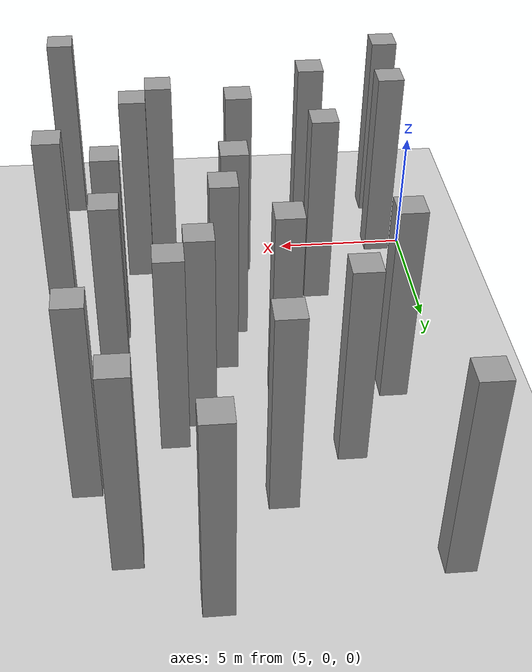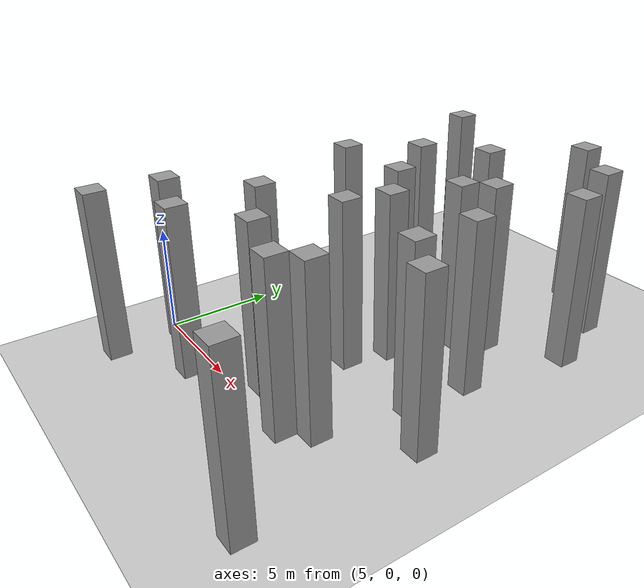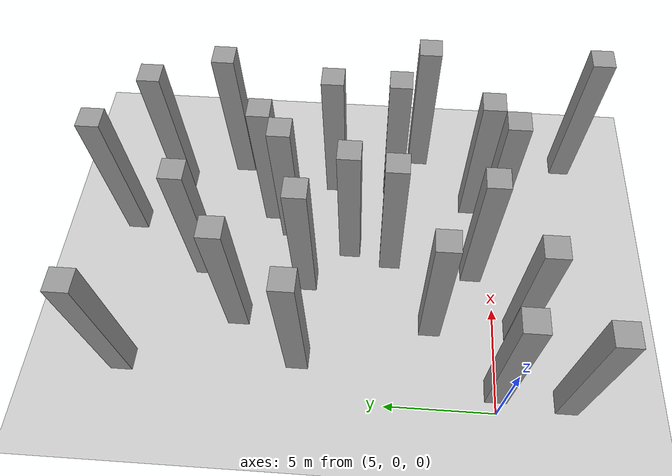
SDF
<sdf version="1.7">
 <world name="default">
  <model name="ground_plane">
   <static>1</static>
   <link name="link">
    <collision name="collision">
     <geometry><plane><normal>0 0 1</normal><size>100 100</size></plane></geometry>
     <surface>
      <contact><collide_bitmask>65535</collide_bitmask></contact>
      <friction><ode><mu>100</mu><mu2>50</mu2></ode></friction>
     </surface>
    </collision>
    <visual name="visual">
     <cast_shadows>0</cast_shadows>
     <geometry><plane><normal>0 0 1</normal><size>100 100</size></plane></geometry>
     <material>
      <script><uri>file://media/materials/scripts/gazebo.material</uri><name>Gazebo/Grey</name></script>
     </material>
    </visual>
   </link>
  </model>
  <model name="unit_box_static95_clone_52_clone_clone_15">
   <link name="link">
    <inertial>
     <mass>1</mass>
     <inertia>
      <ixx>0.166667</ixx>
      <ixy>0</ixy>
      <ixz>0</ixz>
      <iyy>0.166667</iyy>
      <iyz>0</iyz>
      <izz>0.166667</izz>
     </inertia>
    </inertial>
    <visual name="visual">
     <geometry><box><size>1 1 8</size></box></geometry>
     <material>
      <script><name>Gazebo/Grey</name><uri>file://media/materials/scripts/gazebo.material</uri></script>
      <shader type="pixel"/>
     </material>
    </visual>
    <collision name="collision">
     <geometry><box><size>1 1 8</size></box></geometry>
     <surface>
      <friction>
       <ode><mu>1</mu><mu2>1</mu2><fdir1>0 0 0</fdir1><slip1>0</slip1><slip2>0</slip2></ode>
       <torsional>
        <coefficient>1</coefficient>
        <patch_radius>0</patch_radius>
        <surface_radius>0</surface_radius>
        <use_patch_radius>1</use_patch_radius>
        <ode><slip>0</slip></ode>
       </torsional>
      </friction>
      <bounce><restitution_coefficient>0</restitution_coefficient><threshold>1e+06</threshold></bounce>
      <contact>
       <collide_without_contact>0</collide_without_contact>
       <collide_without_contact_bitmask>1</collide_without_contact_bitmask>
       <collide_bitmask>1</collide_bitmask>
       <ode>
        <soft_cfm>0</soft_cfm>
        <soft_erp>0.2</soft_erp>
        <kp>1e+13</kp>
        <kd>1</kd>
        <max_vel>0.01</max_vel>
        <min_depth>0</min_depth>
       </ode>
       <bullet>
        <split_impulse>1</split_impulse>
        <split_impulse_penetration_threshold>-0.01</split_impulse_penetration_threshold>
        <soft_cfm>0</soft_cfm>
        <soft_erp>0.2</soft_erp>
        <kp>1e+13</kp>
        <kd>1</kd>
       </bullet>
      </contact>
     </surface>
    </collision>
   </link>
   <static>1</static>
   <pose>6 0 4 0 -0 0</pose>
  </model>
  <model name="unit_box_static95_clone_52_clone_clone_55">
   <link name="link">
    <inertial>
     <mass>1</mass>
     <inertia>
      <ixx>0.166667</ixx>
      <ixy>0</ixy>
      <ixz>0</ixz>
      <iyy>0.166667</iyy>
      <iyz>0</iyz>
      <izz>0.166667</izz>
     </inertia>
    </inertial>
    <visual name="visual">
     <geometry><box><size>1 1 8</size></box></geometry>
     <material>
      <script><name>Gazebo/Grey</name><uri>file://media/materials/scripts/gazebo.material</uri></script>
      <shader type="pixel"/>
     </material>
    </visual>
    <collision name="collision">
     <geometry><box><size>1 1 8</size></box></geometry>
     <surface>
      <friction>
       <ode><mu>1</mu><mu2>1</mu2><fdir1>0 0 0</fdir1><slip1>0</slip1><slip2>0</slip2></ode>
       <torsional>
        <coefficient>1</coefficient>
        <patch_radius>0</patch_radius>
        <surface_radius>0</surface_radius>
        <use_patch_radius>1</use_patch_radius>
        <ode><slip>0</slip></ode>
       </torsional>
      </friction>
      <bounce><restitution_coefficient>0</restitution_coefficient><threshold>1e+06</threshold></bounce>
      <contact>
       <collide_without_contact>0</collide_without_contact>
       <collide_without_contact_bitmask>1</collide_without_contact_bitmask>
       <collide_bitmask>1</collide_bitmask>
       <ode>
        <soft_cfm>0</soft_cfm>
        <soft_erp>0.2</soft_erp>
        <kp>1e+13</kp>
        <kd>1</kd>
        <max_vel>0.01</max_vel>
        <min_depth>0</min_depth>
       </ode>
       <bullet>
        <split_impulse>1</split_impulse>
        <split_impulse_penetration_threshold>-0.01</split_impulse_penetration_threshold>
        <soft_cfm>0</soft_cfm>
        <soft_erp>0.2</soft_erp>
        <kp>1e+13</kp>
        <kd>1</kd>
       </bullet>
      </contact>
     </surface>
    </collision>
   </link>
   <static>1</static>
   <pose>9 12 4 0 -0 0</pose>
  </model>
  <model name="unit_box_static95_clone_52_clone_clone_56">
   <link name="link">
    <inertial>
     <mass>1</mass>
     <inertia>
      <ixx>0.166667</ixx>
      <ixy>0</ixy>
      <ixz>0</ixz>
      <iyy>0.166667</iyy>
      <iyz>0</iyz>
      <izz>0.166667</izz>
     </inertia>
    </inertial>
    <visual name="visual">
     <geometry><box><size>1 1 8</size></box></geometry>
     <material>
      <script><name>Gazebo/Grey</name><uri>file://media/materials/scripts/gazebo.material</uri></script>
      <shader type="pixel"/>
     </material>
    </visual>
    <collision name="collision">
     <geometry><box><size>1 1 8</size></box></geometry>
     <surface>
      <friction>
       <ode><mu>1</mu><mu2>1</mu2><fdir1>0 0 0</fdir1><slip1>0</slip1><slip2>0</slip2></ode>
       <torsional>
        <coefficient>1</coefficient>
        <patch_radius>0</patch_radius>
        <surface_radius>0</surface_radius>
        <use_patch_radius>1</use_patch_radius>
        <ode><slip>0</slip></ode>
       </torsional>
      </friction>
      <bounce><restitution_coefficient>0</restitution_coefficient><threshold>1e+06</threshold></bounce>
      <contact>
       <collide_without_contact>0</collide_without_contact>
       <collide_without_contact_bitmask>1</collide_without_contact_bitmask>
       <collide_bitmask>1</collide_bitmask>
       <ode>
        <soft_cfm>0</soft_cfm>
        <soft_erp>0.2</soft_erp>
        <kp>1e+13</kp>
        <kd>1</kd>
        <max_vel>0.01</max_vel>
        <min_depth>0</min_depth>
       </ode>
       <bullet>
        <split_impulse>1</split_impulse>
        <split_impulse_penetration_threshold>-0.01</split_impulse_penetration_threshold>
        <soft_cfm>0</soft_cfm>
        <soft_erp>0.2</soft_erp>
        <kp>1e+13</kp>
        <kd>1</kd>
       </bullet>
      </contact>
     </surface>
    </collision>
   </link>
   <static>1</static>
   <pose>11.585 14 4 0 -0 0</pose>
  </model>
  <model name="unit_box_static95_clone_52_clone_clone_57">
   <link name="link">
    <inertial>
     <mass>1</mass>
     <inertia>
      <ixx>0.166667</ixx>
      <ixy>0</ixy>
      <ixz>0</ixz>
      <iyy>0.166667</iyy>
      <iyz>0</iyz>
      <izz>0.166667</izz>
     </inertia>
    </inertial>
    <visual name="visual">
     <geometry><box><size>1 1 8</size></box></geometry>
     <material>
      <script><name>Gazebo/Grey</name><uri>file://media/materials/scripts/gazebo.material</uri></script>
      <shader type="pixel"/>
     </material>
    </visual>
    <collision name="collision">
     <geometry><box><size>1 1 8</size></box></geometry>
     <surface>
      <friction>
       <ode><mu>1</mu><mu2>1</mu2><fdir1>0 0 0</fdir1><slip1>0</slip1><slip2>0</slip2></ode>
       <torsional>
        <coefficient>1</coefficient>
        <patch_radius>0</patch_radius>
        <surface_radius>0</surface_radius>
        <use_patch_radius>1</use_patch_radius>
        <ode><slip>0</slip></ode>
       </torsional>
      </friction>
      <bounce><restitution_coefficient>0</restitution_coefficient><threshold>1e+06</threshold></bounce>
      <contact>
       <collide_without_contact>0</collide_without_contact>
       <collide_without_contact_bitmask>1</collide_without_contact_bitmask>
       <collide_bitmask>1</collide_bitmask>
       <ode>
        <soft_cfm>0</soft_cfm>
        <soft_erp>0.2</soft_erp>
        <kp>1e+13</kp>
        <kd>1</kd>
        <max_vel>0.01</max_vel>
        <min_depth>0</min_depth>
       </ode>
       <bullet>
        <split_impulse>1</split_impulse>
        <split_impulse_penetration_threshold>-0.01</split_impulse_penetration_threshold>
        <soft_cfm>0</soft_cfm>
        <soft_erp>0.2</soft_erp>
        <kp>1e+13</kp>
        <kd>1</kd>
       </bullet>
      </contact>
     </surface>
    </collision>
   </link>
   <static>1</static>
   <pose>14 10 4 0 -0 0</pose>
  </model>
  <model name="unit_box_static95_clone_52_clone_clone_58">
   <link name="link">
    <inertial>
     <mass>1</mass>
     <inertia>
      <ixx>0.166667</ixx>
      <ixy>0</ixy>
      <ixz>0</ixz>
      <iyy>0.166667</iyy>
      <iyz>0</iyz>
      <izz>0.166667</izz>
     </inertia>
    </inertial>
    <visual name="visual">
     <geometry><box><size>1 1 8</size></box></geometry>
     <material>
      <script><name>Gazebo/Grey</name><uri>file://media/materials/scripts/gazebo.material</uri></script>
      <shader type="pixel"/>
     </material>
    </visual>
    <collision name="collision">
     <geometry><box><size>1 1 8</size></box></geometry>
     <surface>
      <friction>
       <ode><mu>1</mu><mu2>1</mu2><fdir1>0 0 0</fdir1><slip1>0</slip1><slip2>0</slip2></ode>
       <torsional>
        <coefficient>1</coefficient>
        <patch_radius>0</patch_radius>
        <surface_radius>0</surface_radius>
        <use_patch_radius>1</use_patch_radius>
        <ode><slip>0</slip></ode>
       </torsional>
      </friction>
      <bounce><restitution_coefficient>0</restitution_coefficient><threshold>1e+06</threshold></bounce>
      <contact>
       <collide_without_contact>0</collide_without_contact>
       <collide_without_contact_bitmask>1</collide_without_contact_bitmask>
       <collide_bitmask>1</collide_bitmask>
       <ode>
        <soft_cfm>0</soft_cfm>
        <soft_erp>0.2</soft_erp>
        <kp>1e+13</kp>
        <kd>1</kd>
        <max_vel>0.01</max_vel>
        <min_depth>0</min_depth>
       </ode>
       <bullet>
        <split_impulse>1</split_impulse>
        <split_impulse_penetration_threshold>-0.01</split_impulse_penetration_threshold>
        <soft_cfm>0</soft_cfm>
        <soft_erp>0.2</soft_erp>
        <kp>1e+13</kp>
        <kd>1</kd>
       </bullet>
      </contact>
     </surface>
    </collision>
   </link>
   <static>1</static>
   <pose>11 9 4 0 -0 0</pose>
  </model>
  <model name="unit_box_static95_clone_52_clone_clone_65">
   <link name="link">
    <inertial>
     <mass>1</mass>
     <inertia>
      <ixx>0.166667</ixx>
      <ixy>0</ixy>
      <ixz>0</ixz>
      <iyy>0.166667</iyy>
      <iyz>0</iyz>
      <izz>0.166667</izz>
     </inertia>
    </inertial>
    <visual name="visual">
     <geometry><box><size>1 1 8</size></box></geometry>
     <material>
      <script><name>Gazebo/Grey</name><uri>file://media/materials/scripts/gazebo.material</uri></script>
      <shader type="pixel"/>
     </material>
    </visual>
    <collision name="collision">
     <geometry><box><size>1 1 8</size></box></geometry>
     <surface>
      <friction>
       <ode><mu>1</mu><mu2>1</mu2><fdir1>0 0 0</fdir1><slip1>0</slip1><slip2>0</slip2></ode>
       <torsional>
        <coefficient>1</coefficient>
        <patch_radius>0</patch_radius>
        <surface_radius>0</surface_radius>
        <use_patch_radius>1</use_patch_radius>
        <ode><slip>0</slip></ode>
       </torsional>
      </friction>
      <bounce><restitution_coefficient>0</restitution_coefficient><threshold>1e+06</threshold></bounce>
      <contact>
       <collide_without_contact>0</collide_without_contact>
       <collide_without_contact_bitmask>1</collide_without_contact_bitmask>
       <collide_bitmask>1</collide_bitmask>
       <ode>
        <soft_cfm>0</soft_cfm>
        <soft_erp>0.2</soft_erp>
        <kp>1e+13</kp>
        <kd>1</kd>
        <max_vel>0.01</max_vel>
        <min_depth>0</min_depth>
       </ode>
       <bullet>
        <split_impulse>1</split_impulse>
        <split_impulse_penetration_threshold>-0.01</split_impulse_penetration_threshold>
        <soft_cfm>0</soft_cfm>
        <soft_erp>0.2</soft_erp>
        <kp>1e+13</kp>
        <kd>1</kd>
       </bullet>
      </contact>
     </surface>
    </collision>
   </link>
   <static>1</static>
   <pose>6.43793 17 4 0 -0 0</pose>
  </model>
  <model name="unit_box_static95_clone_52_clone_clone_68">
   <link name="link">
    <inertial>
     <mass>1</mass>
     <inertia>
      <ixx>0.166667</ixx>
      <ixy>0</ixy>
      <ixz>0</ixz>
      <iyy>0.166667</iyy>
      <iyz>0</iyz>
      <izz>0.166667</izz>
     </inertia>
    </inertial>
    <visual name="visual">
     <geometry><box><size>1 1 8</size></box></geometry>
     <material>
      <script><name>Gazebo/Grey</name><uri>file://media/materials/scripts/gazebo.material</uri></script>
      <shader type="pixel"/>
     </material>
    </visual>
    <collision name="collision">
     <geometry><box><size>1 1 8</size></box></geometry>
     <surface>
      <friction>
       <ode><mu>1</mu><mu2>1</mu2><fdir1>0 0 0</fdir1><slip1>0</slip1><slip2>0</slip2></ode>
       <torsional>
        <coefficient>1</coefficient>
        <patch_radius>0</patch_radius>
        <surface_radius>0</surface_radius>
        <use_patch_radius>1</use_patch_radius>
        <ode><slip>0</slip></ode>
       </torsional>
      </friction>
      <bounce><restitution_coefficient>0</restitution_coefficient><threshold>1e+06</threshold></bounce>
      <contact>
       <collide_without_contact>0</collide_without_contact>
       <collide_without_contact_bitmask>1</collide_without_contact_bitmask>
       <collide_bitmask>1</collide_bitmask>
       <ode>
        <soft_cfm>0</soft_cfm>
        <soft_erp>0.2</soft_erp>
        <kp>1e+13</kp>
        <kd>1</kd>
        <max_vel>0.01</max_vel>
        <min_depth>0</min_depth>
       </ode>
       <bullet>
        <split_impulse>1</split_impulse>
        <split_impulse_penetration_threshold>-0.01</split_impulse_penetration_threshold>
        <soft_cfm>0</soft_cfm>
        <soft_erp>0.2</soft_erp>
        <kp>1e+13</kp>
        <kd>1</kd>
       </bullet>
      </contact>
     </surface>
    </collision>
   </link>
   <static>1</static>
   <pose>15 11 4 0 -0 0</pose>
  </model>
  <model name="unit_box_static95_clone_52_clone_clone_82">
   <link name="link">
    <inertial>
     <mass>1</mass>
     <inertia>
      <ixx>0.166667</ixx>
      <ixy>0</ixy>
      <ixz>0</ixz>
      <iyy>0.166667</iyy>
      <iyz>0</iyz>
      <izz>0.166667</izz>
     </inertia>
    </inertial>
    <visual name="visual">
     <geometry><box><size>1 1 8</size></box></geometry>
     <material>
      <script><name>Gazebo/Grey</name><uri>file://media/materials/scripts/gazebo.material</uri></script>
      <shader type="pixel"/>
     </material>
    </visual>
    <collision name="collision">
     <geometry><box><size>1 1 8</size></box></geometry>
     <surface>
      <friction>
       <ode><mu>1</mu><mu2>1</mu2><fdir1>0 0 0</fdir1><slip1>0</slip1><slip2>0</slip2></ode>
       <torsional>
        <coefficient>1</coefficient>
        <patch_radius>0</patch_radius>
        <surface_radius>0</surface_radius>
        <use_patch_radius>1</use_patch_radius>
        <ode><slip>0</slip></ode>
       </torsional>
      </friction>
      <bounce><restitution_coefficient>0</restitution_coefficient><threshold>1e+06</threshold></bounce>
      <contact>
       <collide_without_contact>0</collide_without_contact>
       <collide_without_contact_bitmask>1</collide_without_contact_bitmask>
       <collide_bitmask>1</collide_bitmask>
       <ode>
        <soft_cfm>0</soft_cfm>
        <soft_erp>0.2</soft_erp>
        <kp>1e+13</kp>
        <kd>1</kd>
        <max_vel>0.01</max_vel>
        <min_depth>0</min_depth>
       </ode>
       <bullet>
        <split_impulse>1</split_impulse>
        <split_impulse_penetration_threshold>-0.01</split_impulse_penetration_threshold>
        <soft_cfm>0</soft_cfm>
        <soft_erp>0.2</soft_erp>
        <kp>1e+13</kp>
        <kd>1</kd>
       </bullet>
      </contact>
     </surface>
    </collision>
   </link>
   <static>1</static>
   <pose>9 -1 4 0 -0 0</pose>
  </model>
  <model name="unit_box_static95_clone_52_clone_clone_83">
   <link name="link">
    <inertial>
     <mass>1</mass>
     <inertia>
      <ixx>0.166667</ixx>
      <ixy>0</ixy>
      <ixz>0</ixz>
      <iyy>0.166667</iyy>
      <iyz>0</iyz>
      <izz>0.166667</izz>
     </inertia>
    </inertial>
    <visual name="visual">
     <geometry><box><size>1 1 8</size></box></geometry>
     <material>
      <script><name>Gazebo/Grey</name><uri>file://media/materials/scripts/gazebo.material</uri></script>
      <shader type="pixel"/>
     </material>
    </visual>
    <collision name="collision">
     <geometry><box><size>1 1 8</size></box></geometry>
     <surface>
      <friction>
       <ode><mu>1</mu><mu2>1</mu2><fdir1>0 0 0</fdir1><slip1>0</slip1><slip2>0</slip2></ode>
       <torsional>
        <coefficient>1</coefficient>
        <patch_radius>0</patch_radius>
        <surface_radius>0</surface_radius>
        <use_patch_radius>1</use_patch_radius>
        <ode><slip>0</slip></ode>
       </torsional>
      </friction>
      <bounce><restitution_coefficient>0</restitution_coefficient><threshold>1e+06</threshold></bounce>
      <contact>
       <collide_without_contact>0</collide_without_contact>
       <collide_without_contact_bitmask>1</collide_without_contact_bitmask>
       <collide_bitmask>1</collide_bitmask>
       <ode>
        <soft_cfm>0</soft_cfm>
        <soft_erp>0.2</soft_erp>
        <kp>1e+13</kp>
        <kd>1</kd>
        <max_vel>0.01</max_vel>
        <min_depth>0</min_depth>
       </ode>
       <bullet>
        <split_impulse>1</split_impulse>
        <split_impulse_penetration_threshold>-0.01</split_impulse_penetration_threshold>
        <soft_cfm>0</soft_cfm>
        <soft_erp>0.2</soft_erp>
        <kp>1e+13</kp>
        <kd>1</kd>
       </bullet>
      </contact>
     </surface>
    </collision>
   </link>
   <static>1</static>
   <pose>9 3 4 0 -0 0</pose>
  </model>
  <model name="unit_box_static95_clone_52_clone_clone_84">
   <link name="link">
    <inertial>
     <mass>1</mass>
     <inertia>
      <ixx>0.166667</ixx>
      <ixy>0</ixy>
      <ixz>0</ixz>
      <iyy>0.166667</iyy>
      <iyz>0</iyz>
      <izz>0.166667</izz>
     </inertia>
    </inertial>
    <visual name="visual">
     <geometry><box><size>1 1 8</size></box></geometry>
     <material>
      <script><name>Gazebo/Grey</name><uri>file://media/materials/scripts/gazebo.material</uri></script>
      <shader type="pixel"/>
     </material>
    </visual>
    <collision name="collision">
     <geometry><box><size>1 1 8</size></box></geometry>
     <surface>
      <friction>
       <ode><mu>1</mu><mu2>1</mu2><fdir1>0 0 0</fdir1><slip1>0</slip1><slip2>0</slip2></ode>
       <torsional>
        <coefficient>1</coefficient>
        <patch_radius>0</patch_radius>
        <surface_radius>0</surface_radius>
        <use_patch_radius>1</use_patch_radius>
        <ode><slip>0</slip></ode>
       </torsional>
      </friction>
      <bounce><restitution_coefficient>0</restitution_coefficient><threshold>1e+06</threshold></bounce>
      <contact>
       <collide_without_contact>0</collide_without_contact>
       <collide_without_contact_bitmask>1</collide_without_contact_bitmask>
       <collide_bitmask>1</collide_bitmask>
       <ode>
        <soft_cfm>0</soft_cfm>
        <soft_erp>0.2</soft_erp>
        <kp>1e+13</kp>
        <kd>1</kd>
        <max_vel>0.01</max_vel>
        <min_depth>0</min_depth>
       </ode>
       <bullet>
        <split_impulse>1</split_impulse>
        <split_impulse_penetration_threshold>-0.01</split_impulse_penetration_threshold>
        <soft_cfm>0</soft_cfm>
        <soft_erp>0.2</soft_erp>
        <kp>1e+13</kp>
        <kd>1</kd>
       </bullet>
      </contact>
     </surface>
    </collision>
   </link>
   <static>1</static>
   <pose>12.4741 5 4 0 -0 0</pose>
  </model>
  <model name="unit_box_static95_clone_52_clone_clone_85">
   <link name="link">
    <inertial>
     <mass>1</mass>
     <inertia>
      <ixx>0.166667</ixx>
      <ixy>0</ixy>
      <ixz>0</ixz>
      <iyy>0.166667</iyy>
      <iyz>0</iyz>
      <izz>0.166667</izz>
     </inertia>
    </inertial>
    <visual name="visual">
     <geometry><box><size>1 1 8</size></box></geometry>
     <material>
      <script><name>Gazebo/Grey</name><uri>file://media/materials/scripts/gazebo.material</uri></script>
      <shader type="pixel"/>
     </material>
    </visual>
    <collision name="collision">
     <geometry><box><size>1 1 8</size></box></geometry>
     <surface>
      <friction>
       <ode><mu>1</mu><mu2>1</mu2><fdir1>0 0 0</fdir1><slip1>0</slip1><slip2>0</slip2></ode>
       <torsional>
        <coefficient>1</coefficient>
        <patch_radius>0</patch_radius>
        <surface_radius>0</surface_radius>
        <use_patch_radius>1</use_patch_radius>
        <ode><slip>0</slip></ode>
       </torsional>
      </friction>
      <bounce><restitution_coefficient>0</restitution_coefficient><threshold>1e+06</threshold></bounce>
      <contact>
       <collide_without_contact>0</collide_without_contact>
       <collide_without_contact_bitmask>1</collide_without_contact_bitmask>
       <collide_bitmask>1</collide_bitmask>
       <ode>
        <soft_cfm>0</soft_cfm>
        <soft_erp>0.2</soft_erp>
        <kp>1e+13</kp>
        <kd>1</kd>
        <max_vel>0.01</max_vel>
        <min_depth>0</min_depth>
       </ode>
       <bullet>
        <split_impulse>1</split_impulse>
        <split_impulse_penetration_threshold>-0.01</split_impulse_penetration_threshold>
        <soft_cfm>0</soft_cfm>
        <soft_erp>0.2</soft_erp>
        <kp>1e+13</kp>
        <kd>1</kd>
       </bullet>
      </contact>
     </surface>
    </collision>
   </link>
   <static>1</static>
   <pose>13 7 4 0 -0 0</pose>
  </model>
  <model name="unit_box_static95_clone_52_clone_clone_86">
   <link name="link">
    <inertial>
     <mass>1</mass>
     <inertia>
      <ixx>0.166667</ixx>
      <ixy>0</ixy>
      <ixz>0</ixz>
      <iyy>0.166667</iyy>
      <iyz>0</iyz>
      <izz>0.166667</izz>
     </inertia>
    </inertial>
    <visual name="visual">
     <geometry><box><size>1 1 8</size></box></geometry>
     <material>
      <script><name>Gazebo/Grey</name><uri>file://media/materials/scripts/gazebo.material</uri></script>
      <shader type="pixel"/>
     </material>
    </visual>
    <collision name="collision">
     <geometry><box><size>1 1 8</size></box></geometry>
     <surface>
      <friction>
       <ode><mu>1</mu><mu2>1</mu2><fdir1>0 0 0</fdir1><slip1>0</slip1><slip2>0</slip2></ode>
       <torsional>
        <coefficient>1</coefficient>
        <patch_radius>0</patch_radius>
        <surface_radius>0</surface_radius>
        <use_patch_radius>1</use_patch_radius>
        <ode><slip>0</slip></ode>
       </torsional>
      </friction>
      <bounce><restitution_coefficient>0</restitution_coefficient><threshold>1e+06</threshold></bounce>
      <contact>
       <collide_without_contact>0</collide_without_contact>
       <collide_without_contact_bitmask>1</collide_without_contact_bitmask>
       <collide_bitmask>1</collide_bitmask>
       <ode>
        <soft_cfm>0</soft_cfm>
        <soft_erp>0.2</soft_erp>
        <kp>1e+13</kp>
        <kd>1</kd>
        <max_vel>0.01</max_vel>
        <min_depth>0</min_depth>
       </ode>
       <bullet>
        <split_impulse>1</split_impulse>
        <split_impulse_penetration_threshold>-0.01</split_impulse_penetration_threshold>
        <soft_cfm>0</soft_cfm>
        <soft_erp>0.2</soft_erp>
        <kp>1e+13</kp>
        <kd>1</kd>
       </bullet>
      </contact>
     </surface>
    </collision>
   </link>
   <static>1</static>
   <pose>17 5 4 0 -0 0</pose>
  </model>
  <model name="unit_box_static95_clone_52_clone_clone_87">
   <link name="link">
    <inertial>
     <mass>1</mass>
     <inertia>
      <ixx>0.166667</ixx>
      <ixy>0</ixy>
      <ixz>0</ixz>
      <iyy>0.166667</iyy>
      <iyz>0</iyz>
      <izz>0.166667</izz>
     </inertia>
    </inertial>
    <visual name="visual">
     <geometry><box><size>1 1 8</size></box></geometry>
     <material>
      <script><name>Gazebo/Grey</name><uri>file://media/materials/scripts/gazebo.material</uri></script>
      <shader type="pixel"/>
     </material>
    </visual>
    <collision name="collision">
     <geometry><box><size>1 1 8</size></box></geometry>
     <surface>
      <friction>
       <ode><mu>1</mu><mu2>1</mu2><fdir1>0 0 0</fdir1><slip1>0</slip1><slip2>0</slip2></ode>
       <torsional>
        <coefficient>1</coefficient>
        <patch_radius>0</patch_radius>
        <surface_radius>0</surface_radius>
        <use_patch_radius>1</use_patch_radius>
        <ode><slip>0</slip></ode>
       </torsional>
      </friction>
      <bounce><restitution_coefficient>0</restitution_coefficient><threshold>1e+06</threshold></bounce>
      <contact>
       <collide_without_contact>0</collide_without_contact>
       <collide_without_contact_bitmask>1</collide_without_contact_bitmask>
       <collide_bitmask>1</collide_bitmask>
       <ode>
        <soft_cfm>0</soft_cfm>
        <soft_erp>0.2</soft_erp>
        <kp>1e+13</kp>
        <kd>1</kd>
        <max_vel>0.01</max_vel>
        <min_depth>0</min_depth>
       </ode>
       <bullet>
        <split_impulse>1</split_impulse>
        <split_impulse_penetration_threshold>-0.01</split_impulse_penetration_threshold>
        <soft_cfm>0</soft_cfm>
        <soft_erp>0.2</soft_erp>
        <kp>1e+13</kp>
        <kd>1</kd>
       </bullet>
      </contact>
     </surface>
    </collision>
   </link>
   <static>1</static>
   <pose>16 1 4 0 -0 0</pose>
  </model>
  <model name="unit_box_static95_clone_52_clone_clone_88">
   <link name="link">
    <inertial>
     <mass>1</mass>
     <inertia>
      <ixx>0.166667</ixx>
      <ixy>0</ixy>
      <ixz>0</ixz>
      <iyy>0.166667</iyy>
      <iyz>0</iyz>
      <izz>0.166667</izz>
     </inertia>
    </inertial>
    <visual name="visual">
     <geometry><box><size>1 1 8</size></box></geometry>
     <material>
      <script><name>Gazebo/Grey</name><uri>file://media/materials/scripts/gazebo.material</uri></script>
      <shader type="pixel"/>
     </material>
    </visual>
    <collision name="collision">
     <geometry><box><size>1 1 8</size></box></geometry>
     <surface>
      <friction>
       <ode><mu>1</mu><mu2>1</mu2><fdir1>0 0 0</fdir1><slip1>0</slip1><slip2>0</slip2></ode>
       <torsional>
        <coefficient>1</coefficient>
        <patch_radius>0</patch_radius>
        <surface_radius>0</surface_radius>
        <use_patch_radius>1</use_patch_radius>
        <ode><slip>0</slip></ode>
       </torsional>
      </friction>
      <bounce><restitution_coefficient>0</restitution_coefficient><threshold>1e+06</threshold></bounce>
      <contact>
       <collide_without_contact>0</collide_without_contact>
       <collide_without_contact_bitmask>1</collide_without_contact_bitmask>
       <collide_bitmask>1</collide_bitmask>
       <ode>
        <soft_cfm>0</soft_cfm>
        <soft_erp>0.2</soft_erp>
        <kp>1e+13</kp>
        <kd>1</kd>
        <max_vel>0.01</max_vel>
        <min_depth>0</min_depth>
       </ode>
       <bullet>
        <split_impulse>1</split_impulse>
        <split_impulse_penetration_threshold>-0.01</split_impulse_penetration_threshold>
        <soft_cfm>0</soft_cfm>
        <soft_erp>0.2</soft_erp>
        <kp>1e+13</kp>
        <kd>1</kd>
       </bullet>
      </contact>
     </surface>
    </collision>
   </link>
   <static>1</static>
   <pose>12 1 4 0 -0 0</pose>
  </model>
  <model name="unit_box_static95_clone_52_clone_clone_115">
   <link name="link">
    <inertial>
     <mass>1</mass>
     <inertia>
      <ixx>0.166667</ixx>
      <ixy>0</ixy>
      <ixz>0</ixz>
      <iyy>0.166667</iyy>
      <iyz>0</iyz>
      <izz>0.166667</izz>
     </inertia>
    </inertial>
    <visual name="visual">
     <geometry><box><size>1 1 8</size></box></geometry>
     <material>
      <script><name>Gazebo/Grey</name><uri>file://media/materials/scripts/gazebo.material</uri></script>
      <shader type="pixel"/>
     </material>
    </visual>
    <collision name="collision">
     <geometry><box><size>1 1 8</size></box></geometry>
     <surface>
      <friction>
       <ode><mu>1</mu><mu2>1</mu2><fdir1>0 0 0</fdir1><slip1>0</slip1><slip2>0</slip2></ode>
       <torsional>
        <coefficient>1</coefficient>
        <patch_radius>0</patch_radius>
        <surface_radius>0</surface_radius>
        <use_patch_radius>1</use_patch_radius>
        <ode><slip>0</slip></ode>
       </torsional>
      </friction>
      <bounce><restitution_coefficient>0</restitution_coefficient><threshold>1e+06</threshold></bounce>
      <contact>
       <collide_without_contact>0</collide_without_contact>
       <collide_without_contact_bitmask>1</collide_without_contact_bitmask>
       <collide_bitmask>1</collide_bitmask>
       <ode>
        <soft_cfm>0</soft_cfm>
        <soft_erp>0.2</soft_erp>
        <kp>1e+13</kp>
        <kd>1</kd>
        <max_vel>0.01</max_vel>
        <min_depth>0</min_depth>
       </ode>
       <bullet>
        <split_impulse>1</split_impulse>
        <split_impulse_penetration_threshold>-0.01</split_impulse_penetration_threshold>
        <soft_cfm>0</soft_cfm>
        <soft_erp>0.2</soft_erp>
        <kp>1e+13</kp>
        <kd>1</kd>
       </bullet>
      </contact>
     </surface>
    </collision>
   </link>
   <static>1</static>
   <pose>17 8 4 0 -0 0</pose>
  </model>
  <model name="unit_box_static95_clone_52_clone_clone_116">
   <link name="link">
    <inertial>
     <mass>1</mass>
     <inertia>
      <ixx>0.166667</ixx>
      <ixy>0</ixy>
      <ixz>0</ixz>
      <iyy>0.166667</iyy>
      <iyz>0</iyz>
      <izz>0.166667</izz>
     </inertia>
    </inertial>
    <visual name="visual">
     <geometry><box><size>1 1 8</size></box></geometry>
     <material>
      <script><name>Gazebo/Grey</name><uri>file://media/materials/scripts/gazebo.material</uri></script>
      <shader type="pixel"/>
     </material>
    </visual>
    <collision name="collision">
     <geometry><box><size>1 1 8</size></box></geometry>
     <surface>
      <friction>
       <ode><mu>1</mu><mu2>1</mu2><fdir1>0 0 0</fdir1><slip1>0</slip1><slip2>0</slip2></ode>
       <torsional>
        <coefficient>1</coefficient>
        <patch_radius>0</patch_radius>
        <surface_radius>0</surface_radius>
        <use_patch_radius>1</use_patch_radius>
        <ode><slip>0</slip></ode>
       </torsional>
      </friction>
      <bounce><restitution_coefficient>0</restitution_coefficient><threshold>1e+06</threshold></bounce>
      <contact>
       <collide_without_contact>0</collide_without_contact>
       <collide_without_contact_bitmask>1</collide_without_contact_bitmask>
       <collide_bitmask>1</collide_bitmask>
       <ode>
        <soft_cfm>0</soft_cfm>
        <soft_erp>0.2</soft_erp>
        <kp>1e+13</kp>
        <kd>1</kd>
        <max_vel>0.01</max_vel>
        <min_depth>0</min_depth>
       </ode>
       <bullet>
        <split_impulse>1</split_impulse>
        <split_impulse_penetration_threshold>-0.01</split_impulse_penetration_threshold>
        <soft_cfm>0</soft_cfm>
        <soft_erp>0.2</soft_erp>
        <kp>1e+13</kp>
        <kd>1</kd>
       </bullet>
      </contact>
     </surface>
    </collision>
   </link>
   <static>1</static>
   <pose>18 13 4 0 -0 0</pose>
  </model>
  <model name="unit_box_static95_clone_52_clone_clone_117">
   <link name="link">
    <inertial>
     <mass>1</mass>
     <inertia>
      <ixx>0.166667</ixx>
      <ixy>0</ixy>
      <ixz>0</ixz>
      <iyy>0.166667</iyy>
      <iyz>0</iyz>
      <izz>0.166667</izz>
     </inertia>
    </inertial>
    <visual name="visual">
     <geometry><box><size>1 1 8</size></box></geometry>
     <material>
      <script><name>Gazebo/Grey</name><uri>file://media/materials/scripts/gazebo.material</uri></script>
      <shader type="pixel"/>
     </material>
    </visual>
    <collision name="collision">
     <geometry><box><size>1 1 8</size></box></geometry>
     <surface>
      <friction>
       <ode><mu>1</mu><mu2>1</mu2><fdir1>0 0 0</fdir1><slip1>0</slip1><slip2>0</slip2></ode>
       <torsional>
        <coefficient>1</coefficient>
        <patch_radius>0</patch_radius>
        <surface_radius>0</surface_radius>
        <use_patch_radius>1</use_patch_radius>
        <ode><slip>0</slip></ode>
       </torsional>
      </friction>
      <bounce><restitution_coefficient>0</restitution_coefficient><threshold>1e+06</threshold></bounce>
      <contact>
       <collide_without_contact>0</collide_without_contact>
       <collide_without_contact_bitmask>1</collide_without_contact_bitmask>
       <collide_bitmask>1</collide_bitmask>
       <ode>
        <soft_cfm>0</soft_cfm>
        <soft_erp>0.2</soft_erp>
        <kp>1e+13</kp>
        <kd>1</kd>
        <max_vel>0.01</max_vel>
        <min_depth>0</min_depth>
       </ode>
       <bullet>
        <split_impulse>1</split_impulse>
        <split_impulse_penetration_threshold>-0.01</split_impulse_penetration_threshold>
        <soft_cfm>0</soft_cfm>
        <soft_erp>0.2</soft_erp>
        <kp>1e+13</kp>
        <kd>1</kd>
       </bullet>
      </contact>
     </surface>
    </collision>
   </link>
   <static>1</static>
   <pose>16.6893 16.0564 4 0 -0 0</pose>
  </model>
  <model name="unit_box_static95_clone_52_clone_clone_118">
   <link name="link">
    <inertial>
     <mass>1</mass>
     <inertia>
      <ixx>0.166667</ixx>
      <ixy>0</ixy>
      <ixz>0</ixz>
      <iyy>0.166667</iyy>
      <iyz>0</iyz>
      <izz>0.166667</izz>
     </inertia>
    </inertial>
    <visual name="visual">
     <geometry><box><size>1 1 8</size></box></geometry>
     <material>
      <script><name>Gazebo/Grey</name><uri>file://media/materials/scripts/gazebo.material</uri></script>
      <shader type="pixel"/>
     </material>
    </visual>
    <collision name="collision">
     <geometry><box><size>1 1 8</size></box></geometry>
     <surface>
      <friction>
       <ode><mu>1</mu><mu2>1</mu2><fdir1>0 0 0</fdir1><slip1>0</slip1><slip2>0</slip2></ode>
       <torsional>
        <coefficient>1</coefficient>
        <patch_radius>0</patch_radius>
        <surface_radius>0</surface_radius>
        <use_patch_radius>1</use_patch_radius>
        <ode><slip>0</slip></ode>
       </torsional>
      </friction>
      <bounce><restitution_coefficient>0</restitution_coefficient><threshold>1e+06</threshold></bounce>
      <contact>
       <collide_without_contact>0</collide_without_contact>
       <collide_without_contact_bitmask>1</collide_without_contact_bitmask>
       <collide_bitmask>1</collide_bitmask>
       <ode>
        <soft_cfm>0</soft_cfm>
        <soft_erp>0.2</soft_erp>
        <kp>1e+13</kp>
        <kd>1</kd>
        <max_vel>0.01</max_vel>
        <min_depth>0</min_depth>
       </ode>
       <bullet>
        <split_impulse>1</split_impulse>
        <split_impulse_penetration_threshold>-0.01</split_impulse_penetration_threshold>
        <soft_cfm>0</soft_cfm>
        <soft_erp>0.2</soft_erp>
        <kp>1e+13</kp>
        <kd>1</kd>
       </bullet>
      </contact>
     </surface>
    </collision>
   </link>
   <static>1</static>
   <pose>14 18 4 0 -0 0</pose>
  </model>
  <model name="unit_box_static95_clone_52_clone_clone_129">
   <link name="link">
    <inertial>
     <mass>1</mass>
     <inertia>
      <ixx>0.166667</ixx>
      <ixy>0</ixy>
      <ixz>0</ixz>
      <iyy>0.166667</iyy>
      <iyz>0</iyz>
      <izz>0.166667</izz>
     </inertia>
    </inertial>
    <visual name="visual">
     <geometry><box><size>1 1 8</size></box></geometry>
     <material>
      <script><name>Gazebo/Grey</name><uri>file://media/materials/scripts/gazebo.material</uri></script>
      <shader type="pixel"/>
     </material>
    </visual>
    <collision name="collision">
     <geometry><box><size>1 1 8</size></box></geometry>
     <surface>
      <friction>
       <ode><mu>1</mu><mu2>1</mu2><fdir1>0 0 0</fdir1><slip1>0</slip1><slip2>0</slip2></ode>
       <torsional>
        <coefficient>1</coefficient>
        <patch_radius>0</patch_radius>
        <surface_radius>0</surface_radius>
        <use_patch_radius>1</use_patch_radius>
        <ode><slip>0</slip></ode>
       </torsional>
      </friction>
      <bounce><restitution_coefficient>0</restitution_coefficient><threshold>1e+06</threshold></bounce>
      <contact>
       <collide_without_contact>0</collide_without_contact>
       <collide_without_contact_bitmask>1</collide_without_contact_bitmask>
       <collide_bitmask>1</collide_bitmask>
       <ode>
        <soft_cfm>0</soft_cfm>
        <soft_erp>0.2</soft_erp>
        <kp>1e+13</kp>
        <kd>1</kd>
        <max_vel>0.01</max_vel>
        <min_depth>0</min_depth>
       </ode>
       <bullet>
        <split_impulse>1</split_impulse>
        <split_impulse_penetration_threshold>-0.01</split_impulse_penetration_threshold>
        <soft_cfm>0</soft_cfm>
        <soft_erp>0.2</soft_erp>
        <kp>1e+13</kp>
        <kd>1</kd>
       </bullet>
      </contact>
     </surface>
    </collision>
   </link>
   <static>1</static>
   <pose>15 0 4 0 -0 0</pose>
  </model>
  <model name="unit_box_static95_clone_52_clone_clone_131">
   <link name="link">
    <inertial>
     <mass>1</mass>
     <inertia>
      <ixx>0.166667</ixx>
      <ixy>0</ixy>
      <ixz>0</ixz>
      <iyy>0.166667</iyy>
      <iyz>0</iyz>
      <izz>0.166667</izz>
     </inertia>
    </inertial>
    <visual name="visual">
     <geometry><box><size>1 1 8</size></box></geometry>
     <material>
      <script><name>Gazebo/Grey</name><uri>file://media/materials/scripts/gazebo.material</uri></script>
      <shader type="pixel"/>
     </material>
    </visual>
    <collision name="collision">
     <geometry><box><size>1 1 8</size></box></geometry>
     <surface>
      <friction>
       <ode><mu>1</mu><mu2>1</mu2><fdir1>0 0 0</fdir1><slip1>0</slip1><slip2>0</slip2></ode>
       <torsional>
        <coefficient>1</coefficient>
        <patch_radius>0</patch_radius>
        <surface_radius>0</surface_radius>
        <use_patch_radius>1</use_patch_radius>
        <ode><slip>0</slip></ode>
       </torsional>
      </friction>
      <bounce><restitution_coefficient>0</restitution_coefficient><threshold>1e+06</threshold></bounce>
      <contact>
       <collide_without_contact>0</collide_without_contact>
       <collide_without_contact_bitmask>1</collide_without_contact_bitmask>
       <collide_bitmask>1</collide_bitmask>
       <ode>
        <soft_cfm>0</soft_cfm>
        <soft_erp>0.2</soft_erp>
        <kp>1e+13</kp>
        <kd>1</kd>
        <max_vel>0.01</max_vel>
        <min_depth>0</min_depth>
       </ode>
       <bullet>
        <split_impulse>1</split_impulse>
        <split_impulse_penetration_threshold>-0.01</split_impulse_penetration_threshold>
        <soft_cfm>0</soft_cfm>
        <soft_erp>0.2</soft_erp>
        <kp>1e+13</kp>
        <kd>1</kd>
       </bullet>
      </contact>
     </surface>
    </collision>
   </link>
   <static>1</static>
   <pose>7 9 4 0 -0 0</pose>
  </model>
  <model name="unit_box_static95_clone_52_clone_clone_132">
   <link name="link">
    <inertial>
     <mass>1</mass>
     <inertia>
      <ixx>0.166667</ixx>
      <ixy>0</ixy>
      <ixz>0</ixz>
      <iyy>0.166667</iyy>
      <iyz>0</iyz>
      <izz>0.166667</izz>
     </inertia>
    </inertial>
    <visual name="visual">
     <geometry><box><size>1 1 8</size></box></geometry>
     <material>
      <script><name>Gazebo/Grey</name><uri>file://media/materials/scripts/gazebo.material</uri></script>
      <shader type="pixel"/>
     </material>
    </visual>
    <collision name="collision">
     <geometry><box><size>1 1 8</size></box></geometry>
     <surface>
      <friction>
       <ode><mu>1</mu><mu2>1</mu2><fdir1>0 0 0</fdir1><slip1>0</slip1><slip2>0</slip2></ode>
       <torsional>
        <coefficient>1</coefficient>
        <patch_radius>0</patch_radius>
        <surface_radius>0</surface_radius>
        <use_patch_radius>1</use_patch_radius>
        <ode><slip>0</slip></ode>
       </torsional>
      </friction>
      <bounce><restitution_coefficient>0</restitution_coefficient><threshold>1e+06</threshold></bounce>
      <contact>
       <collide_without_contact>0</collide_without_contact>
       <collide_without_contact_bitmask>1</collide_without_contact_bitmask>
       <collide_bitmask>1</collide_bitmask>
       <ode>
        <soft_cfm>0</soft_cfm>
        <soft_erp>0.2</soft_erp>
        <kp>1e+13</kp>
        <kd>1</kd>
        <max_vel>0.01</max_vel>
        <min_depth>0</min_depth>
       </ode>
       <bullet>
        <split_impulse>1</split_impulse>
        <split_impulse_penetration_threshold>-0.01</split_impulse_penetration_threshold>
        <soft_cfm>0</soft_cfm>
        <soft_erp>0.2</soft_erp>
        <kp>1e+13</kp>
        <kd>1</kd>
       </bullet>
      </contact>
     </surface>
    </collision>
   </link>
   <static>1</static>
   <pose>5.7014 -3.10083 4 0 -0 0</pose>
  </model>
  <model name="unit_box_static95_clone_52_clone_clone_137">
   <link name="link">
    <inertial>
     <mass>1</mass>
     <inertia>
      <ixx>0.166667</ixx>
      <ixy>0</ixy>
      <ixz>0</ixz>
      <iyy>0.166667</iyy>
      <iyz>0</iyz>
      <izz>0.166667</izz>
     </inertia>
    </inertial>
    <visual name="visual">
     <geometry><box><size>1 1 8</size></box></geometry>
     <material>
      <script><name>Gazebo/Grey</name><uri>file://media/materials/scripts/gazebo.material</uri></script>
      <shader type="pixel"/>
     </material>
    </visual>
    <collision name="collision">
     <geometry><box><size>1 1 8</size></box></geometry>
     <surface>
      <friction>
       <ode><mu>1</mu><mu2>1</mu2><fdir1>0 0 0</fdir1><slip1>0</slip1><slip2>0</slip2></ode>
       <torsional>
        <coefficient>1</coefficient>
        <patch_radius>0</patch_radius>
        <surface_radius>0</surface_radius>
        <use_patch_radius>1</use_patch_radius>
        <ode><slip>0</slip></ode>
       </torsional>
      </friction>
      <bounce><restitution_coefficient>0</restitution_coefficient><threshold>1e+06</threshold></bounce>
      <contact>
       <collide_without_contact>0</collide_without_contact>
       <collide_without_contact_bitmask>1</collide_without_contact_bitmask>
       <collide_bitmask>1</collide_bitmask>
       <ode>
        <soft_cfm>0</soft_cfm>
        <soft_erp>0.2</soft_erp>
        <kp>1e+13</kp>
        <kd>1</kd>
        <max_vel>0.01</max_vel>
        <min_depth>0</min_depth>
       </ode>
       <bullet>
        <split_impulse>1</split_impulse>
        <split_impulse_penetration_threshold>-0.01</split_impulse_penetration_threshold>
        <soft_cfm>0</soft_cfm>
        <soft_erp>0.2</soft_erp>
        <kp>1e+13</kp>
        <kd>1</kd>
       </bullet>
      </contact>
     </surface>
    </collision>
   </link>
   <static>1</static>
   <pose>18.8811 -3.94404 4 0 -0 0</pose>
  </model>
  <model name="unit_box_static95_clone_52_clone_clone_138">
   <link name="link">
    <inertial>
     <mass>1</mass>
     <inertia>
      <ixx>0.166667</ixx>
      <ixy>0</ixy>
      <ixz>0</ixz>
      <iyy>0.166667</iyy>
      <iyz>0</iyz>
      <izz>0.166667</izz>
     </inertia>
    </inertial>
    <visual name="visual">
     <geometry><box><size>1 1 8</size></box></geometry>
     <material>
      <script><name>Gazebo/Grey</name><uri>file://media/materials/scripts/gazebo.material</uri></script>
      <shader type="pixel"/>
     </material>
    </visual>
    <collision name="collision">
     <geometry><box><size>1 1 8</size></box></geometry>
     <surface>
      <friction>
       <ode><mu>1</mu><mu2>1</mu2><fdir1>0 0 0</fdir1><slip1>0</slip1><slip2>0</slip2></ode>
       <torsional>
        <coefficient>1</coefficient>
        <patch_radius>0</patch_radius>
        <surface_radius>0</surface_radius>
        <use_patch_radius>1</use_patch_radius>
        <ode><slip>0</slip></ode>
       </torsional>
      </friction>
      <bounce><restitution_coefficient>0</restitution_coefficient><threshold>1e+06</threshold></bounce>
      <contact>
       <collide_without_contact>0</collide_without_contact>
       <collide_without_contact_bitmask>1</collide_without_contact_bitmask>
       <collide_bitmask>1</collide_bitmask>
       <ode>
        <soft_cfm>0</soft_cfm>
        <soft_erp>0.2</soft_erp>
        <kp>1e+13</kp>
        <kd>1</kd>
        <max_vel>0.01</max_vel>
        <min_depth>0</min_depth>
       </ode>
       <bullet>
        <split_impulse>1</split_impulse>
        <split_impulse_penetration_threshold>-0.01</split_impulse_penetration_threshold>
        <soft_cfm>0</soft_cfm>
        <soft_erp>0.2</soft_erp>
        <kp>1e+13</kp>
        <kd>1</kd>
       </bullet>
      </contact>
     </surface>
    </collision>
   </link>
   <static>1</static>
   <pose>19.0572 3.73066 4 0 -0 0</pose>
  </model>
 </world>
</sdf>
